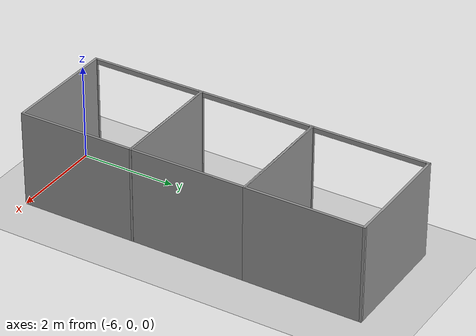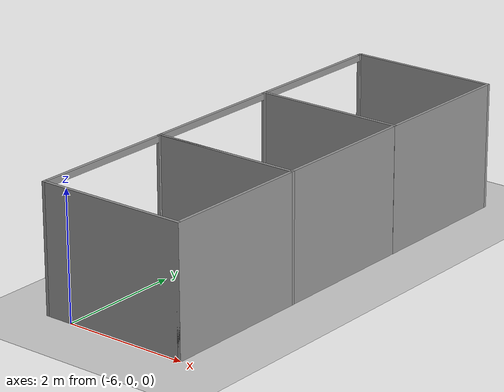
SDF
<sdf version="1.6">
 <world name="default">
  <model name="ground_plane">
   <static>1</static>
   <link name="link">
    <collision name="collision">
     <geometry><plane><normal>0 0 1</normal><size>100 100</size></plane></geometry>
     <surface>
      <contact><collide_bitmask>65535</collide_bitmask></contact>
      <friction><ode><mu>100</mu><mu2>50</mu2></ode></friction>
     </surface>
    </collision>
    <visual name="visual">
     <cast_shadows>0</cast_shadows>
     <geometry><plane><normal>0 0 1</normal><size>100 100</size></plane></geometry>
     <material>
      <script><uri>file://media/materials/scripts/gazebo.material</uri><name>Gazebo/Grey</name></script>
     </material>
    </visual>
   </link>
  </model>
  <model name="makeshift_hospital_room_empty">
   <link name="Wall_10">
    <pose>-0.625 2.625 0 0 -0 1.5708</pose>
    <visual name="Wall_10_Visual">
     <pose>0 0 1 0 -0 0</pose>
     <geometry><box><size>2.45 0.05 2</size></box></geometry>
     <material>
      <script><uri>file://media/materials/scripts/gazebo.material</uri><name>Gazebo/Grey</name></script>
      <ambient>1 1 1 1</ambient>
     </material>
     <meta><layer>0</layer></meta>
    </visual>
    <collision name="Wall_10_Collision">
     <pose>0 0 1 0 -0 0</pose>
     <geometry><box><size>2.45 0.05 2</size></box></geometry>
     <surface>
      <friction>
       <ode><mu>1</mu><mu2>1</mu2><fdir1>0 0 0</fdir1><slip1>0</slip1><slip2>0</slip2></ode>
       <torsional>
        <coefficient>1</coefficient>
        <patch_radius>0</patch_radius>
        <surface_radius>0</surface_radius>
        <use_patch_radius>1</use_patch_radius>
        <ode><slip>0</slip></ode>
       </torsional>
      </friction>
      <bounce><restitution_coefficient>0</restitution_coefficient><threshold>1e+06</threshold></bounce>
      <contact>
       <collide_without_contact>0</collide_without_contact>
       <collide_without_contact_bitmask>1</collide_without_contact_bitmask>
       <collide_bitmask>1</collide_bitmask>
       <ode>
        <soft_cfm>0</soft_cfm>
        <soft_erp>0.2</soft_erp>
        <kp>1e+13</kp>
        <kd>1</kd>
        <max_vel>0.01</max_vel>
        <min_depth>0</min_depth>
       </ode>
       <bullet>
        <split_impulse>1</split_impulse>
        <split_impulse_penetration_threshold>-0.01</split_impulse_penetration_threshold>
        <soft_cfm>0</soft_cfm>
        <soft_erp>0.2</soft_erp>
        <kp>1e+13</kp>
        <kd>1</kd>
       </bullet>
      </contact>
     </surface>
    </collision>
   </link>
   <link name="Wall_11">
    <pose>-1.825 3.825 0 0 -0 3.14159</pose>
    <visual name="Wall_11_Visual">
     <pose>0 0 1 0 -0 0</pose>
     <geometry><box><size>2.45 0.05 2</size></box></geometry>
     <material>
      <script><uri>file://media/materials/scripts/gazebo.material</uri><name>Gazebo/Grey</name></script>
      <ambient>1 1 1 1</ambient>
     </material>
     <meta><layer>0</layer></meta>
    </visual>
    <collision name="Wall_11_Collision">
     <pose>0 0 1 0 -0 0</pose>
     <geometry><box><size>2.45 0.05 2</size></box></geometry>
     <surface>
      <friction>
       <ode><mu>1</mu><mu2>1</mu2><fdir1>0 0 0</fdir1><slip1>0</slip1><slip2>0</slip2></ode>
       <torsional>
        <coefficient>1</coefficient>
        <patch_radius>0</patch_radius>
        <surface_radius>0</surface_radius>
        <use_patch_radius>1</use_patch_radius>
        <ode><slip>0</slip></ode>
       </torsional>
      </friction>
      <bounce><restitution_coefficient>0</restitution_coefficient><threshold>1e+06</threshold></bounce>
      <contact>
       <collide_without_contact>0</collide_without_contact>
       <collide_without_contact_bitmask>1</collide_without_contact_bitmask>
       <collide_bitmask>1</collide_bitmask>
       <ode>
        <soft_cfm>0</soft_cfm>
        <soft_erp>0.2</soft_erp>
        <kp>1e+13</kp>
        <kd>1</kd>
        <max_vel>0.01</max_vel>
        <min_depth>0</min_depth>
       </ode>
       <bullet>
        <split_impulse>1</split_impulse>
        <split_impulse_penetration_threshold>-0.01</split_impulse_penetration_threshold>
        <soft_cfm>0</soft_cfm>
        <soft_erp>0.2</soft_erp>
        <kp>1e+13</kp>
        <kd>1</kd>
       </bullet>
      </contact>
     </surface>
    </collision>
   </link>
   <link name="Wall_13">
    <pose>-3.025 2.625 0 0 0 -1.5708</pose>
    <visual name="Wall_13_Visual_1">
     <pose>1.19221 0 1 0 -0 0</pose>
     <geometry><box><size>0.065587 0.05 2</size></box></geometry>
     <material>
      <script><uri>file://media/materials/scripts/gazebo.material</uri><name>Gazebo/Grey</name></script>
      <ambient>1 1 1 1</ambient>
     </material>
     <meta><layer>0</layer></meta>
    </visual>
    <visual name="Wall_13_Visual_2">
     <pose>0.009413 0 1.95 0 -0 0</pose>
     <geometry><box><size>2.3 0.05 0.1</size></box></geometry>
     <material>
      <script><uri>file://media/materials/scripts/gazebo.material</uri><name>Gazebo/Grey</name></script>
      <ambient>1 1 1 1</ambient>
     </material>
     <meta><layer>0</layer></meta>
    </visual>
    <visual name="Wall_13_Visual_0">
     <pose>-1.18279 0 1 0 -0 0</pose>
     <geometry><box><size>0.084413 0.05 2</size></box></geometry>
     <material>
      <script><uri>file://media/materials/scripts/gazebo.material</uri><name>Gazebo/Grey</name></script>
      <ambient>1 1 1 1</ambient>
     </material>
     <meta><layer>0</layer></meta>
    </visual>
    <collision name="Wall_13_Collision_2">
     <pose>0.009413 0 1.95 0 -0 0</pose>
     <geometry><box><size>2.3 0.05 0.1</size></box></geometry>
     <surface>
      <friction>
       <ode><mu>1</mu><mu2>1</mu2><fdir1>0 0 0</fdir1><slip1>0</slip1><slip2>0</slip2></ode>
       <torsional>
        <coefficient>1</coefficient>
        <patch_radius>0</patch_radius>
        <surface_radius>0</surface_radius>
        <use_patch_radius>1</use_patch_radius>
        <ode><slip>0</slip></ode>
       </torsional>
      </friction>
      <bounce><restitution_coefficient>0</restitution_coefficient><threshold>1e+06</threshold></bounce>
      <contact>
       <collide_without_contact>0</collide_without_contact>
       <collide_without_contact_bitmask>1</collide_without_contact_bitmask>
       <collide_bitmask>1</collide_bitmask>
       <ode>
        <soft_cfm>0</soft_cfm>
        <soft_erp>0.2</soft_erp>
        <kp>1e+13</kp>
        <kd>1</kd>
        <max_vel>0.01</max_vel>
        <min_depth>0</min_depth>
       </ode>
       <bullet>
        <split_impulse>1</split_impulse>
        <split_impulse_penetration_threshold>-0.01</split_impulse_penetration_threshold>
        <soft_cfm>0</soft_cfm>
        <soft_erp>0.2</soft_erp>
        <kp>1e+13</kp>
        <kd>1</kd>
       </bullet>
      </contact>
     </surface>
    </collision>
    <collision name="Wall_13_Collision_0">
     <pose>-1.18279 0 1 0 -0 0</pose>
     <geometry><box><size>0.084413 0.05 2</size></box></geometry>
     <surface>
      <friction>
       <ode><mu>1</mu><mu2>1</mu2><fdir1>0 0 0</fdir1><slip1>0</slip1><slip2>0</slip2></ode>
       <torsional>
        <coefficient>1</coefficient>
        <patch_radius>0</patch_radius>
        <surface_radius>0</surface_radius>
        <use_patch_radius>1</use_patch_radius>
        <ode><slip>0</slip></ode>
       </torsional>
      </friction>
      <bounce><restitution_coefficient>0</restitution_coefficient><threshold>1e+06</threshold></bounce>
      <contact>
       <collide_without_contact>0</collide_without_contact>
       <collide_without_contact_bitmask>1</collide_without_contact_bitmask>
       <collide_bitmask>1</collide_bitmask>
       <ode>
        <soft_cfm>0</soft_cfm>
        <soft_erp>0.2</soft_erp>
        <kp>1e+13</kp>
        <kd>1</kd>
        <max_vel>0.01</max_vel>
        <min_depth>0</min_depth>
       </ode>
       <bullet>
        <split_impulse>1</split_impulse>
        <split_impulse_penetration_threshold>-0.01</split_impulse_penetration_threshold>
        <soft_cfm>0</soft_cfm>
        <soft_erp>0.2</soft_erp>
        <kp>1e+13</kp>
        <kd>1</kd>
       </bullet>
      </contact>
     </surface>
    </collision>
    <collision name="Wall_13_Collision_1">
     <pose>1.19221 0 1 0 -0 0</pose>
     <geometry><box><size>0.065587 0.05 2</size></box></geometry>
     <surface>
      <friction>
       <ode><mu>1</mu><mu2>1</mu2><fdir1>0 0 0</fdir1><slip1>0</slip1><slip2>0</slip2></ode>
       <torsional>
        <coefficient>1</coefficient>
        <patch_radius>0</patch_radius>
        <surface_radius>0</surface_radius>
        <use_patch_radius>1</use_patch_radius>
        <ode><slip>0</slip></ode>
       </torsional>
      </friction>
      <bounce><restitution_coefficient>0</restitution_coefficient><threshold>1e+06</threshold></bounce>
      <contact>
       <collide_without_contact>0</collide_without_contact>
       <collide_without_contact_bitmask>1</collide_without_contact_bitmask>
       <collide_bitmask>1</collide_bitmask>
       <ode>
        <soft_cfm>0</soft_cfm>
        <soft_erp>0.2</soft_erp>
        <kp>1e+13</kp>
        <kd>1</kd>
        <max_vel>0.01</max_vel>
        <min_depth>0</min_depth>
       </ode>
       <bullet>
        <split_impulse>1</split_impulse>
        <split_impulse_penetration_threshold>-0.01</split_impulse_penetration_threshold>
        <soft_cfm>0</soft_cfm>
        <soft_erp>0.2</soft_erp>
        <kp>1e+13</kp>
        <kd>1</kd>
       </bullet>
      </contact>
     </surface>
    </collision>
   </link>
   <link name="Wall_9">
    <pose>-1.825 1.425 0 0 -0 0</pose>
    <visual name="Wall_9_Visual">
     <pose>0 0 1 0 -0 0</pose>
     <geometry><box><size>2.45 0.05 2</size></box></geometry>
     <material>
      <script><uri>file://media/materials/scripts/gazebo.material</uri><name>Gazebo/Grey</name></script>
      <ambient>1 1 1 1</ambient>
     </material>
     <meta><layer>0</layer></meta>
    </visual>
    <collision name="Wall_9_Collision">
     <pose>0 0 1 0 -0 0</pose>
     <geometry><box><size>2.45 0.05 2</size></box></geometry>
     <surface>
      <friction>
       <ode><mu>1</mu><mu2>1</mu2><fdir1>0 0 0</fdir1><slip1>0</slip1><slip2>0</slip2></ode>
       <torsional>
        <coefficient>1</coefficient>
        <patch_radius>0</patch_radius>
        <surface_radius>0</surface_radius>
        <use_patch_radius>1</use_patch_radius>
        <ode><slip>0</slip></ode>
       </torsional>
      </friction>
      <bounce><restitution_coefficient>0</restitution_coefficient><threshold>1e+06</threshold></bounce>
      <contact>
       <collide_without_contact>0</collide_without_contact>
       <collide_without_contact_bitmask>1</collide_without_contact_bitmask>
       <collide_bitmask>1</collide_bitmask>
       <ode>
        <soft_cfm>0</soft_cfm>
        <soft_erp>0.2</soft_erp>
        <kp>1e+13</kp>
        <kd>1</kd>
        <max_vel>0.01</max_vel>
        <min_depth>0</min_depth>
       </ode>
       <bullet>
        <split_impulse>1</split_impulse>
        <split_impulse_penetration_threshold>-0.01</split_impulse_penetration_threshold>
        <soft_cfm>0</soft_cfm>
        <soft_erp>0.2</soft_erp>
        <kp>1e+13</kp>
        <kd>1</kd>
       </bullet>
      </contact>
     </surface>
    </collision>
   </link>
   <static>1</static>
   <pose>-3.39794 -1.40695 0 0 -0 0</pose>
  </model>
  <model name="makeshift_hospital_room_empty_clone">
   <link name="Wall_10">
    <pose>-0.625 2.625 0 0 -0 1.5708</pose>
    <visual name="Wall_10_Visual">
     <pose>0 0 1 0 -0 0</pose>
     <geometry><box><size>2.45 0.05 2</size></box></geometry>
     <material>
      <script><uri>file://media/materials/scripts/gazebo.material</uri><name>Gazebo/Grey</name></script>
      <ambient>1 1 1 1</ambient>
     </material>
     <meta><layer>0</layer></meta>
    </visual>
    <collision name="Wall_10_Collision">
     <pose>0 0 1 0 -0 0</pose>
     <geometry><box><size>2.45 0.05 2</size></box></geometry>
     <surface>
      <friction>
       <ode><mu>1</mu><mu2>1</mu2><fdir1>0 0 0</fdir1><slip1>0</slip1><slip2>0</slip2></ode>
       <torsional>
        <coefficient>1</coefficient>
        <patch_radius>0</patch_radius>
        <surface_radius>0</surface_radius>
        <use_patch_radius>1</use_patch_radius>
        <ode><slip>0</slip></ode>
       </torsional>
      </friction>
      <bounce><restitution_coefficient>0</restitution_coefficient><threshold>1e+06</threshold></bounce>
      <contact>
       <collide_without_contact>0</collide_without_contact>
       <collide_without_contact_bitmask>1</collide_without_contact_bitmask>
       <collide_bitmask>1</collide_bitmask>
       <ode>
        <soft_cfm>0</soft_cfm>
        <soft_erp>0.2</soft_erp>
        <kp>1e+13</kp>
        <kd>1</kd>
        <max_vel>0.01</max_vel>
        <min_depth>0</min_depth>
       </ode>
       <bullet>
        <split_impulse>1</split_impulse>
        <split_impulse_penetration_threshold>-0.01</split_impulse_penetration_threshold>
        <soft_cfm>0</soft_cfm>
        <soft_erp>0.2</soft_erp>
        <kp>1e+13</kp>
        <kd>1</kd>
       </bullet>
      </contact>
     </surface>
    </collision>
   </link>
   <link name="Wall_11">
    <pose>-1.825 3.825 0 0 -0 3.14159</pose>
    <visual name="Wall_11_Visual">
     <pose>0 0 1 0 -0 0</pose>
     <geometry><box><size>2.45 0.05 2</size></box></geometry>
     <material>
      <script><uri>file://media/materials/scripts/gazebo.material</uri><name>Gazebo/Grey</name></script>
      <ambient>1 1 1 1</ambient>
     </material>
     <meta><layer>0</layer></meta>
    </visual>
    <collision name="Wall_11_Collision">
     <pose>0 0 1 0 -0 0</pose>
     <geometry><box><size>2.45 0.05 2</size></box></geometry>
     <surface>
      <friction>
       <ode><mu>1</mu><mu2>1</mu2><fdir1>0 0 0</fdir1><slip1>0</slip1><slip2>0</slip2></ode>
       <torsional>
        <coefficient>1</coefficient>
        <patch_radius>0</patch_radius>
        <surface_radius>0</surface_radius>
        <use_patch_radius>1</use_patch_radius>
        <ode><slip>0</slip></ode>
       </torsional>
      </friction>
      <bounce><restitution_coefficient>0</restitution_coefficient><threshold>1e+06</threshold></bounce>
      <contact>
       <collide_without_contact>0</collide_without_contact>
       <collide_without_contact_bitmask>1</collide_without_contact_bitmask>
       <collide_bitmask>1</collide_bitmask>
       <ode>
        <soft_cfm>0</soft_cfm>
        <soft_erp>0.2</soft_erp>
        <kp>1e+13</kp>
        <kd>1</kd>
        <max_vel>0.01</max_vel>
        <min_depth>0</min_depth>
       </ode>
       <bullet>
        <split_impulse>1</split_impulse>
        <split_impulse_penetration_threshold>-0.01</split_impulse_penetration_threshold>
        <soft_cfm>0</soft_cfm>
        <soft_erp>0.2</soft_erp>
        <kp>1e+13</kp>
        <kd>1</kd>
       </bullet>
      </contact>
     </surface>
    </collision>
   </link>
   <link name="Wall_13">
    <pose>-3.025 2.625 0 0 0 -1.5708</pose>
    <visual name="Wall_13_Visual_1">
     <pose>1.19221 0 1 0 -0 0</pose>
     <geometry><box><size>0.065587 0.05 2</size></box></geometry>
     <material>
      <script><uri>file://media/materials/scripts/gazebo.material</uri><name>Gazebo/Grey</name></script>
      <ambient>1 1 1 1</ambient>
     </material>
     <meta><layer>0</layer></meta>
    </visual>
    <visual name="Wall_13_Visual_2">
     <pose>0.009413 0 1.95 0 -0 0</pose>
     <geometry><box><size>2.3 0.05 0.1</size></box></geometry>
     <material>
      <script><uri>file://media/materials/scripts/gazebo.material</uri><name>Gazebo/Grey</name></script>
      <ambient>1 1 1 1</ambient>
     </material>
     <meta><layer>0</layer></meta>
    </visual>
    <visual name="Wall_13_Visual_0">
     <pose>-1.18279 0 1 0 -0 0</pose>
     <geometry><box><size>0.084413 0.05 2</size></box></geometry>
     <material>
      <script><uri>file://media/materials/scripts/gazebo.material</uri><name>Gazebo/Grey</name></script>
      <ambient>1 1 1 1</ambient>
     </material>
     <meta><layer>0</layer></meta>
    </visual>
    <collision name="Wall_13_Collision_2">
     <pose>0.009413 0 1.95 0 -0 0</pose>
     <geometry><box><size>2.3 0.05 0.1</size></box></geometry>
     <surface>
      <friction>
       <ode><mu>1</mu><mu2>1</mu2><fdir1>0 0 0</fdir1><slip1>0</slip1><slip2>0</slip2></ode>
       <torsional>
        <coefficient>1</coefficient>
        <patch_radius>0</patch_radius>
        <surface_radius>0</surface_radius>
        <use_patch_radius>1</use_patch_radius>
        <ode><slip>0</slip></ode>
       </torsional>
      </friction>
      <bounce><restitution_coefficient>0</restitution_coefficient><threshold>1e+06</threshold></bounce>
      <contact>
       <collide_without_contact>0</collide_without_contact>
       <collide_without_contact_bitmask>1</collide_without_contact_bitmask>
       <collide_bitmask>1</collide_bitmask>
       <ode>
        <soft_cfm>0</soft_cfm>
        <soft_erp>0.2</soft_erp>
        <kp>1e+13</kp>
        <kd>1</kd>
        <max_vel>0.01</max_vel>
        <min_depth>0</min_depth>
       </ode>
       <bullet>
        <split_impulse>1</split_impulse>
        <split_impulse_penetration_threshold>-0.01</split_impulse_penetration_threshold>
        <soft_cfm>0</soft_cfm>
        <soft_erp>0.2</soft_erp>
        <kp>1e+13</kp>
        <kd>1</kd>
       </bullet>
      </contact>
     </surface>
    </collision>
    <collision name="Wall_13_Collision_0">
     <pose>-1.18279 0 1 0 -0 0</pose>
     <geometry><box><size>0.084413 0.05 2</size></box></geometry>
     <surface>
      <friction>
       <ode><mu>1</mu><mu2>1</mu2><fdir1>0 0 0</fdir1><slip1>0</slip1><slip2>0</slip2></ode>
       <torsional>
        <coefficient>1</coefficient>
        <patch_radius>0</patch_radius>
        <surface_radius>0</surface_radius>
        <use_patch_radius>1</use_patch_radius>
        <ode><slip>0</slip></ode>
       </torsional>
      </friction>
      <bounce><restitution_coefficient>0</restitution_coefficient><threshold>1e+06</threshold></bounce>
      <contact>
       <collide_without_contact>0</collide_without_contact>
       <collide_without_contact_bitmask>1</collide_without_contact_bitmask>
       <collide_bitmask>1</collide_bitmask>
       <ode>
        <soft_cfm>0</soft_cfm>
        <soft_erp>0.2</soft_erp>
        <kp>1e+13</kp>
        <kd>1</kd>
        <max_vel>0.01</max_vel>
        <min_depth>0</min_depth>
       </ode>
       <bullet>
        <split_impulse>1</split_impulse>
        <split_impulse_penetration_threshold>-0.01</split_impulse_penetration_threshold>
        <soft_cfm>0</soft_cfm>
        <soft_erp>0.2</soft_erp>
        <kp>1e+13</kp>
        <kd>1</kd>
       </bullet>
      </contact>
     </surface>
    </collision>
    <collision name="Wall_13_Collision_1">
     <pose>1.19221 0 1 0 -0 0</pose>
     <geometry><box><size>0.065587 0.05 2</size></box></geometry>
     <surface>
      <friction>
       <ode><mu>1</mu><mu2>1</mu2><fdir1>0 0 0</fdir1><slip1>0</slip1><slip2>0</slip2></ode>
       <torsional>
        <coefficient>1</coefficient>
        <patch_radius>0</patch_radius>
        <surface_radius>0</surface_radius>
        <use_patch_radius>1</use_patch_radius>
        <ode><slip>0</slip></ode>
       </torsional>
      </friction>
      <bounce><restitution_coefficient>0</restitution_coefficient><threshold>1e+06</threshold></bounce>
      <contact>
       <collide_without_contact>0</collide_without_contact>
       <collide_without_contact_bitmask>1</collide_without_contact_bitmask>
       <collide_bitmask>1</collide_bitmask>
       <ode>
        <soft_cfm>0</soft_cfm>
        <soft_erp>0.2</soft_erp>
        <kp>1e+13</kp>
        <kd>1</kd>
        <max_vel>0.01</max_vel>
        <min_depth>0</min_depth>
       </ode>
       <bullet>
        <split_impulse>1</split_impulse>
        <split_impulse_penetration_threshold>-0.01</split_impulse_penetration_threshold>
        <soft_cfm>0</soft_cfm>
        <soft_erp>0.2</soft_erp>
        <kp>1e+13</kp>
        <kd>1</kd>
       </bullet>
      </contact>
     </surface>
    </collision>
   </link>
   <link name="Wall_9">
    <pose>-1.825 1.425 0 0 -0 0</pose>
    <visual name="Wall_9_Visual">
     <pose>0 0 1 0 -0 0</pose>
     <geometry><box><size>2.45 0.05 2</size></box></geometry>
     <material>
      <script><uri>file://media/materials/scripts/gazebo.material</uri><name>Gazebo/Grey</name></script>
      <ambient>1 1 1 1</ambient>
     </material>
     <meta><layer>0</layer></meta>
    </visual>
    <collision name="Wall_9_Collision">
     <pose>0 0 1 0 -0 0</pose>
     <geometry><box><size>2.45 0.05 2</size></box></geometry>
     <surface>
      <friction>
       <ode><mu>1</mu><mu2>1</mu2><fdir1>0 0 0</fdir1><slip1>0</slip1><slip2>0</slip2></ode>
       <torsional>
        <coefficient>1</coefficient>
        <patch_radius>0</patch_radius>
        <surface_radius>0</surface_radius>
        <use_patch_radius>1</use_patch_radius>
        <ode><slip>0</slip></ode>
       </torsional>
      </friction>
      <bounce><restitution_coefficient>0</restitution_coefficient><threshold>1e+06</threshold></bounce>
      <contact>
       <collide_without_contact>0</collide_without_contact>
       <collide_without_contact_bitmask>1</collide_without_contact_bitmask>
       <collide_bitmask>1</collide_bitmask>
       <ode>
        <soft_cfm>0</soft_cfm>
        <soft_erp>0.2</soft_erp>
        <kp>1e+13</kp>
        <kd>1</kd>
        <max_vel>0.01</max_vel>
        <min_depth>0</min_depth>
       </ode>
       <bullet>
        <split_impulse>1</split_impulse>
        <split_impulse_penetration_threshold>-0.01</split_impulse_penetration_threshold>
        <soft_cfm>0</soft_cfm>
        <soft_erp>0.2</soft_erp>
        <kp>1e+13</kp>
        <kd>1</kd>
       </bullet>
      </contact>
     </surface>
    </collision>
   </link>
   <static>1</static>
   <pose>-3.40022 0.99253 0 0 -0 0</pose>
  </model>
  <model name="makeshift_hospital_room_empty_clone_0">
   <link name="Wall_10">
    <pose>-0.625 2.625 0 0 -0 1.5708</pose>
    <visual name="Wall_10_Visual">
     <pose>0 0 1 0 -0 0</pose>
     <geometry><box><size>2.45 0.05 2</size></box></geometry>
     <material>
      <script><uri>file://media/materials/scripts/gazebo.material</uri><name>Gazebo/Grey</name></script>
      <ambient>1 1 1 1</ambient>
     </material>
     <meta><layer>0</layer></meta>
    </visual>
    <collision name="Wall_10_Collision">
     <pose>0 0 1 0 -0 0</pose>
     <geometry><box><size>2.45 0.05 2</size></box></geometry>
     <surface>
      <friction>
       <ode><mu>1</mu><mu2>1</mu2><fdir1>0 0 0</fdir1><slip1>0</slip1><slip2>0</slip2></ode>
       <torsional>
        <coefficient>1</coefficient>
        <patch_radius>0</patch_radius>
        <surface_radius>0</surface_radius>
        <use_patch_radius>1</use_patch_radius>
        <ode><slip>0</slip></ode>
       </torsional>
      </friction>
      <bounce><restitution_coefficient>0</restitution_coefficient><threshold>1e+06</threshold></bounce>
      <contact>
       <collide_without_contact>0</collide_without_contact>
       <collide_without_contact_bitmask>1</collide_without_contact_bitmask>
       <collide_bitmask>1</collide_bitmask>
       <ode>
        <soft_cfm>0</soft_cfm>
        <soft_erp>0.2</soft_erp>
        <kp>1e+13</kp>
        <kd>1</kd>
        <max_vel>0.01</max_vel>
        <min_depth>0</min_depth>
       </ode>
       <bullet>
        <split_impulse>1</split_impulse>
        <split_impulse_penetration_threshold>-0.01</split_impulse_penetration_threshold>
        <soft_cfm>0</soft_cfm>
        <soft_erp>0.2</soft_erp>
        <kp>1e+13</kp>
        <kd>1</kd>
       </bullet>
      </contact>
     </surface>
    </collision>
   </link>
   <link name="Wall_11">
    <pose>-1.825 3.825 0 0 -0 3.14159</pose>
    <visual name="Wall_11_Visual">
     <pose>0 0 1 0 -0 0</pose>
     <geometry><box><size>2.45 0.05 2</size></box></geometry>
     <material>
      <script><uri>file://media/materials/scripts/gazebo.material</uri><name>Gazebo/Grey</name></script>
      <ambient>1 1 1 1</ambient>
     </material>
     <meta><layer>0</layer></meta>
    </visual>
    <collision name="Wall_11_Collision">
     <pose>0 0 1 0 -0 0</pose>
     <geometry><box><size>2.45 0.05 2</size></box></geometry>
     <surface>
      <friction>
       <ode><mu>1</mu><mu2>1</mu2><fdir1>0 0 0</fdir1><slip1>0</slip1><slip2>0</slip2></ode>
       <torsional>
        <coefficient>1</coefficient>
        <patch_radius>0</patch_radius>
        <surface_radius>0</surface_radius>
        <use_patch_radius>1</use_patch_radius>
        <ode><slip>0</slip></ode>
       </torsional>
      </friction>
      <bounce><restitution_coefficient>0</restitution_coefficient><threshold>1e+06</threshold></bounce>
      <contact>
       <collide_without_contact>0</collide_without_contact>
       <collide_without_contact_bitmask>1</collide_without_contact_bitmask>
       <collide_bitmask>1</collide_bitmask>
       <ode>
        <soft_cfm>0</soft_cfm>
        <soft_erp>0.2</soft_erp>
        <kp>1e+13</kp>
        <kd>1</kd>
        <max_vel>0.01</max_vel>
        <min_depth>0</min_depth>
       </ode>
       <bullet>
        <split_impulse>1</split_impulse>
        <split_impulse_penetration_threshold>-0.01</split_impulse_penetration_threshold>
        <soft_cfm>0</soft_cfm>
        <soft_erp>0.2</soft_erp>
        <kp>1e+13</kp>
        <kd>1</kd>
       </bullet>
      </contact>
     </surface>
    </collision>
   </link>
   <link name="Wall_13">
    <pose>-3.025 2.625 0 0 0 -1.5708</pose>
    <visual name="Wall_13_Visual_1">
     <pose>1.19221 0 1 0 -0 0</pose>
     <geometry><box><size>0.065587 0.05 2</size></box></geometry>
     <material>
      <script><uri>file://media/materials/scripts/gazebo.material</uri><name>Gazebo/Grey</name></script>
      <ambient>1 1 1 1</ambient>
     </material>
     <meta><layer>0</layer></meta>
    </visual>
    <visual name="Wall_13_Visual_2">
     <pose>0.009413 0 1.95 0 -0 0</pose>
     <geometry><box><size>2.3 0.05 0.1</size></box></geometry>
     <material>
      <script><uri>file://media/materials/scripts/gazebo.material</uri><name>Gazebo/Grey</name></script>
      <ambient>1 1 1 1</ambient>
     </material>
     <meta><layer>0</layer></meta>
    </visual>
    <visual name="Wall_13_Visual_0">
     <pose>-1.18279 0 1 0 -0 0</pose>
     <geometry><box><size>0.084413 0.05 2</size></box></geometry>
     <material>
      <script><uri>file://media/materials/scripts/gazebo.material</uri><name>Gazebo/Grey</name></script>
      <ambient>1 1 1 1</ambient>
     </material>
     <meta><layer>0</layer></meta>
    </visual>
    <collision name="Wall_13_Collision_2">
     <pose>0.009413 0 1.95 0 -0 0</pose>
     <geometry><box><size>2.3 0.05 0.1</size></box></geometry>
     <surface>
      <friction>
       <ode><mu>1</mu><mu2>1</mu2><fdir1>0 0 0</fdir1><slip1>0</slip1><slip2>0</slip2></ode>
       <torsional>
        <coefficient>1</coefficient>
        <patch_radius>0</patch_radius>
        <surface_radius>0</surface_radius>
        <use_patch_radius>1</use_patch_radius>
        <ode><slip>0</slip></ode>
       </torsional>
      </friction>
      <bounce><restitution_coefficient>0</restitution_coefficient><threshold>1e+06</threshold></bounce>
      <contact>
       <collide_without_contact>0</collide_without_contact>
       <collide_without_contact_bitmask>1</collide_without_contact_bitmask>
       <collide_bitmask>1</collide_bitmask>
       <ode>
        <soft_cfm>0</soft_cfm>
        <soft_erp>0.2</soft_erp>
        <kp>1e+13</kp>
        <kd>1</kd>
        <max_vel>0.01</max_vel>
        <min_depth>0</min_depth>
       </ode>
       <bullet>
        <split_impulse>1</split_impulse>
        <split_impulse_penetration_threshold>-0.01</split_impulse_penetration_threshold>
        <soft_cfm>0</soft_cfm>
        <soft_erp>0.2</soft_erp>
        <kp>1e+13</kp>
        <kd>1</kd>
       </bullet>
      </contact>
     </surface>
    </collision>
    <collision name="Wall_13_Collision_0">
     <pose>-1.18279 0 1 0 -0 0</pose>
     <geometry><box><size>0.084413 0.05 2</size></box></geometry>
     <surface>
      <friction>
       <ode><mu>1</mu><mu2>1</mu2><fdir1>0 0 0</fdir1><slip1>0</slip1><slip2>0</slip2></ode>
       <torsional>
        <coefficient>1</coefficient>
        <patch_radius>0</patch_radius>
        <surface_radius>0</surface_radius>
        <use_patch_radius>1</use_patch_radius>
        <ode><slip>0</slip></ode>
       </torsional>
      </friction>
      <bounce><restitution_coefficient>0</restitution_coefficient><threshold>1e+06</threshold></bounce>
      <contact>
       <collide_without_contact>0</collide_without_contact>
       <collide_without_contact_bitmask>1</collide_without_contact_bitmask>
       <collide_bitmask>1</collide_bitmask>
       <ode>
        <soft_cfm>0</soft_cfm>
        <soft_erp>0.2</soft_erp>
        <kp>1e+13</kp>
        <kd>1</kd>
        <max_vel>0.01</max_vel>
        <min_depth>0</min_depth>
       </ode>
       <bullet>
        <split_impulse>1</split_impulse>
        <split_impulse_penetration_threshold>-0.01</split_impulse_penetration_threshold>
        <soft_cfm>0</soft_cfm>
        <soft_erp>0.2</soft_erp>
        <kp>1e+13</kp>
        <kd>1</kd>
       </bullet>
      </contact>
     </surface>
    </collision>
    <collision name="Wall_13_Collision_1">
     <pose>1.19221 0 1 0 -0 0</pose>
     <geometry><box><size>0.065587 0.05 2</size></box></geometry>
     <surface>
      <friction>
       <ode><mu>1</mu><mu2>1</mu2><fdir1>0 0 0</fdir1><slip1>0</slip1><slip2>0</slip2></ode>
       <torsional>
        <coefficient>1</coefficient>
        <patch_radius>0</patch_radius>
        <surface_radius>0</surface_radius>
        <use_patch_radius>1</use_patch_radius>
        <ode><slip>0</slip></ode>
       </torsional>
      </friction>
      <bounce><restitution_coefficient>0</restitution_coefficient><threshold>1e+06</threshold></bounce>
      <contact>
       <collide_without_contact>0</collide_without_contact>
       <collide_without_contact_bitmask>1</collide_without_contact_bitmask>
       <collide_bitmask>1</collide_bitmask>
       <ode>
        <soft_cfm>0</soft_cfm>
        <soft_erp>0.2</soft_erp>
        <kp>1e+13</kp>
        <kd>1</kd>
        <max_vel>0.01</max_vel>
        <min_depth>0</min_depth>
       </ode>
       <bullet>
        <split_impulse>1</split_impulse>
        <split_impulse_penetration_threshold>-0.01</split_impulse_penetration_threshold>
        <soft_cfm>0</soft_cfm>
        <soft_erp>0.2</soft_erp>
        <kp>1e+13</kp>
        <kd>1</kd>
       </bullet>
      </contact>
     </surface>
    </collision>
   </link>
   <link name="Wall_9">
    <pose>-1.825 1.425 0 0 -0 0</pose>
    <visual name="Wall_9_Visual">
     <pose>0 0 1 0 -0 0</pose>
     <geometry><box><size>2.45 0.05 2</size></box></geometry>
     <material>
      <script><uri>file://media/materials/scripts/gazebo.material</uri><name>Gazebo/Grey</name></script>
      <ambient>1 1 1 1</ambient>
     </material>
     <meta><layer>0</layer></meta>
    </visual>
    <collision name="Wall_9_Collision">
     <pose>0 0 1 0 -0 0</pose>
     <geometry><box><size>2.45 0.05 2</size></box></geometry>
     <surface>
      <friction>
       <ode><mu>1</mu><mu2>1</mu2><fdir1>0 0 0</fdir1><slip1>0</slip1><slip2>0</slip2></ode>
       <torsional>
        <coefficient>1</coefficient>
        <patch_radius>0</patch_radius>
        <surface_radius>0</surface_radius>
        <use_patch_radius>1</use_patch_radius>
        <ode><slip>0</slip></ode>
       </torsional>
      </friction>
      <bounce><restitution_coefficient>0</restitution_coefficient><threshold>1e+06</threshold></bounce>
      <contact>
       <collide_without_contact>0</collide_without_contact>
       <collide_without_contact_bitmask>1</collide_without_contact_bitmask>
       <collide_bitmask>1</collide_bitmask>
       <ode>
        <soft_cfm>0</soft_cfm>
        <soft_erp>0.2</soft_erp>
        <kp>1e+13</kp>
        <kd>1</kd>
        <max_vel>0.01</max_vel>
        <min_depth>0</min_depth>
       </ode>
       <bullet>
        <split_impulse>1</split_impulse>
        <split_impulse_penetration_threshold>-0.01</split_impulse_penetration_threshold>
        <soft_cfm>0</soft_cfm>
        <soft_erp>0.2</soft_erp>
        <kp>1e+13</kp>
        <kd>1</kd>
       </bullet>
      </contact>
     </surface>
    </collision>
   </link>
   <static>1</static>
   <pose>-3.39848 3.39223 0 0 -0 0</pose>
  </model>
 </world>
</sdf>
